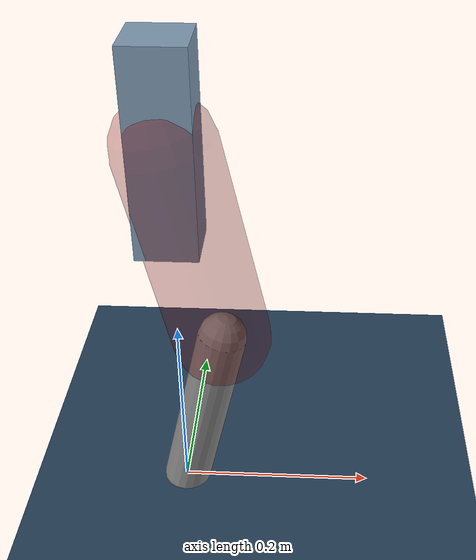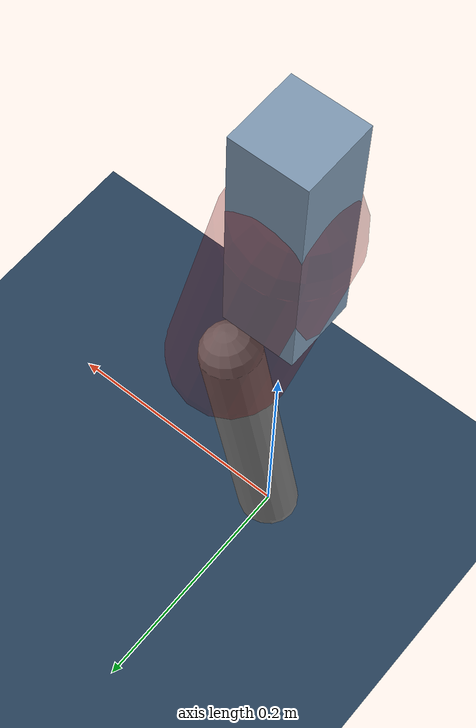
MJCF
<mujoco model="Hopper2D">
	<compiler inertiafromgeom="true" angle="radian" />
	<option timestep="0.001" integrator="implicit" cone="elliptic" solver="Newton" tolerance="1e-10" />

	<default>
		<geom contype="1" conaffinity="1" condim="3" friction="2 0.005 0.0001" solref="0.005 1" />
		<joint limited="true" damping="0.1" />
	</default>

	<asset>
		<texture name="skybox" type="skybox" builtin="gradient" rgb1=".4 .6 .8" rgb2="0 0 0" width="800" height="800" />
		<texture name="grid" type="2d" builtin="checker" rgb1=".1 .2 .3" rgb2=".2 .3 .4" width="300" height="300" mark="edge" markrgb=".2 .3 .4" />
		<material name="ground" texture="grid" texrepeat="1 1" texuniform="true" reflectance="0.1" />
		<material name="leg" rgba="0.5 0.6 0.7 1" />
	</asset>

	<worldbody>

		<geom name="floor" type="plane" size="5 5 0.25" material="ground" />

		<light directional="false" diffuse="0.8 0.8 0.8" specular="0.3 0.3 0.3" pos="0 0 2" dir="0 0 -1" />
		<light mode="targetbodycom" target="base" directional="false" diffuse="0.8 0.8 0.8" specular="0.3 0.3 0.3" pos="0 0 2" dir="0 0 -1" />

		<camera name="fixed" pos="0 -2 1" xyaxes="1 0 0 0 0 1" />
		<camera name="tracking" mode="trackcom" pos="0 -3 1" />

		<body name="root" pos="0 0 0.3996695591818984">
			<joint name="slide_x" type="slide" axis="1 0 0" range="-100 100" />
			<joint name="slide_z" type="slide" axis="0 0 1" range="0 10" />

			<body name="base" pos="0 0 0">
				<geom name="torso" type="box" size="0.03 0.03 0.1" mass="1.839" material="leg" />

				<body name="link1" pos="0 0 0" euler="0 1.3563297646237584 0">
					<joint type="hinge" axis="0 -1 0" pos="0 0 0" name="hinge1" limited="true" range="-3.14 3.14" stiffness="0" damping="0.1" />
					<geom name="thigh" type="capsule" fromto="0 0 0 0.2112450481239034 0 0" size="0.05" rgba="0.5 0 0 0.3" mass="0.7576371251221489" />

					<body name="link2" pos="0.2112450481239034 0 0" euler="0 0.44302870854935694 0">
						<joint type="hinge" axis="0 -1 0" pos="0 0 0" name="hinge2" limited="true" range="-3.14 3.14" stiffness="0" damping="0.1" />
						<geom name="shank" type="capsule" fromto="0 0 0 0.198424511057995 0 0" size="0.025" mass="0.3995820599521955" />

					</body>
				</body>
			</body>
		</body>
	</worldbody>

	<actuator>
		<motor name="torque1" joint="hinge1" ctrlrange="-36.25089285467117 36.25089285467117" ctrllimited="true" gear="1" />
		<motor name="torque2" joint="hinge2" ctrlrange="-12.571999858956982 12.571999858956982" ctrllimited="true" gear="1" />
	</actuator>
</mujoco>
